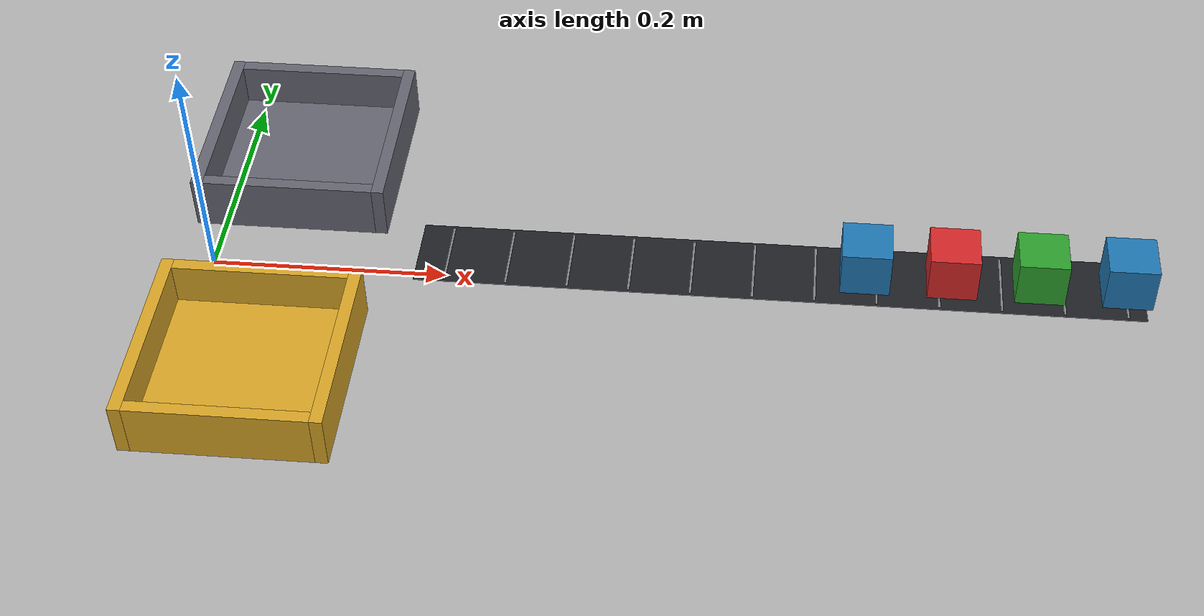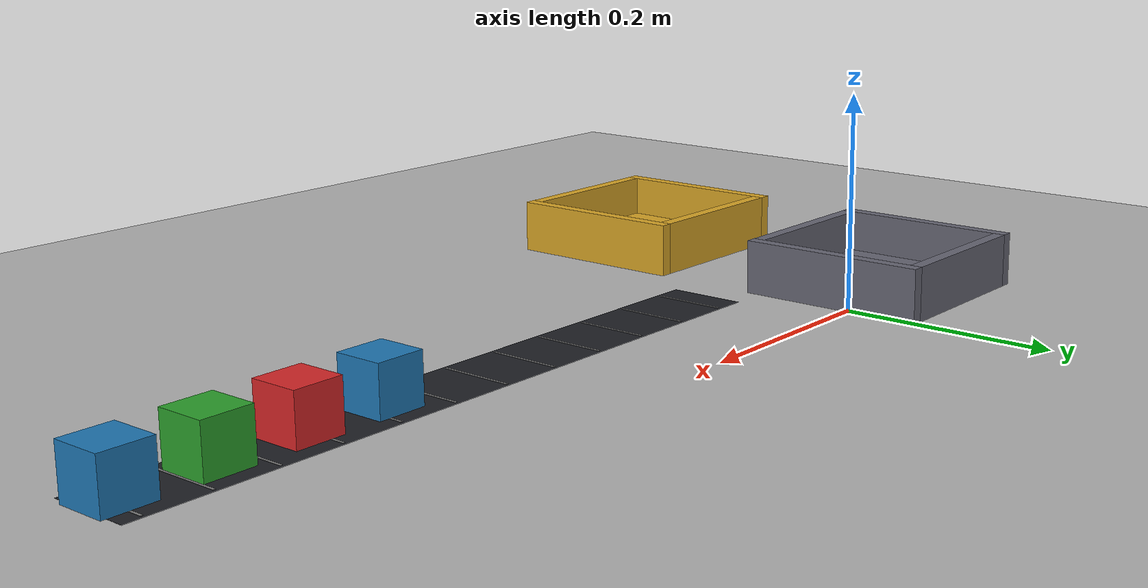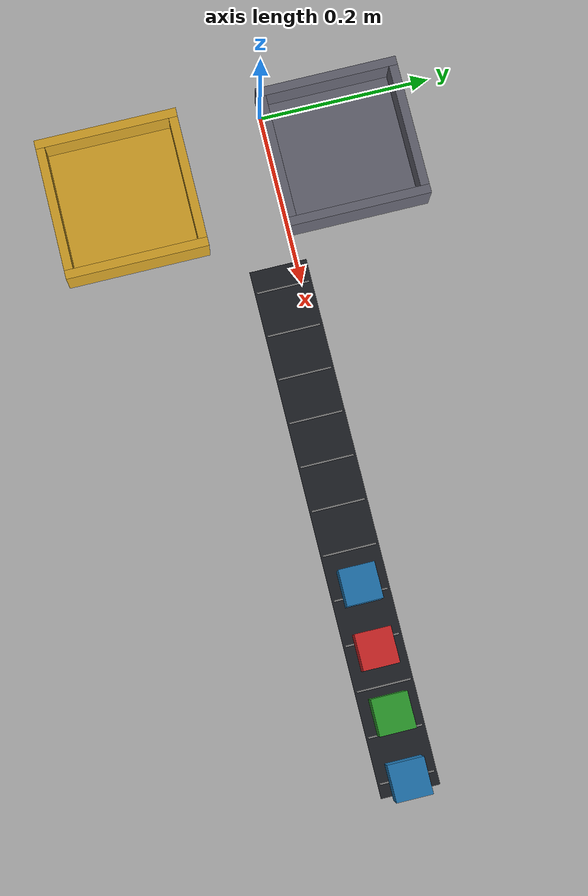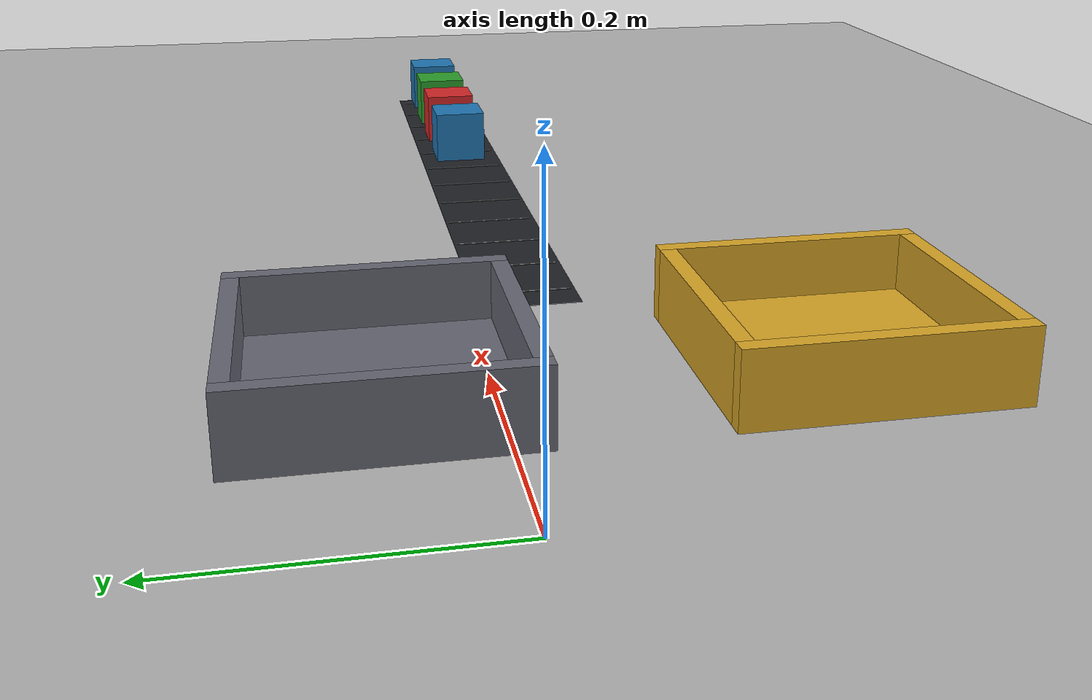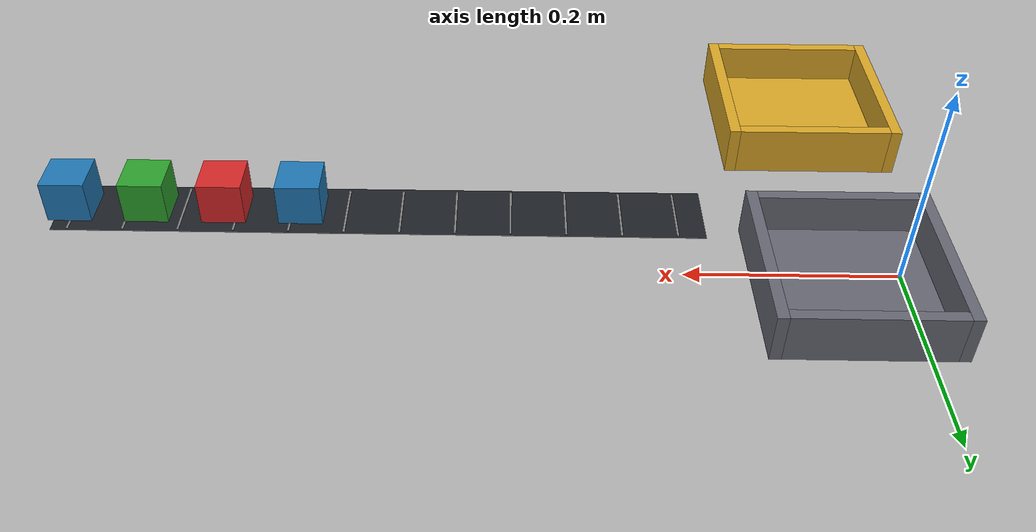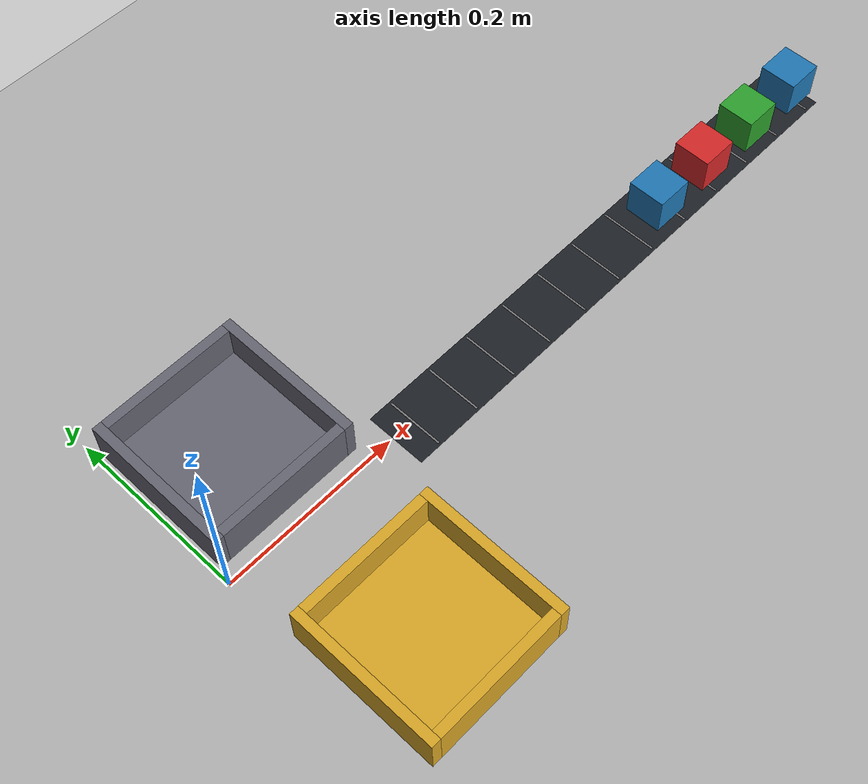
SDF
<sdf version="1.7">
  <world name="conveyor_sorting">
    <gravity>0 0 -9.8</gravity>
    <physics type="ode">
      <max_step_size>0.001</max_step_size>
      <real_time_update_rate>1000</real_time_update_rate>
      <real_time_factor>1.0</real_time_factor>
      <ode>
        <solver>
          <type>quick</type>
          <iters>100</iters>
        </solver>
        <constraints>
          <cfm>0.000001</cfm>
          <erp>0.2</erp>
        </constraints>
      </ode>
    </physics>
    <model name="table">
      <static>true</static>
      <pose>0 0 0 0 0 0</pose>
      <link name="base_link">
        <collision name="table_collision">
          <geometry>
            <box>
              <size>3.0 2.0 0.1</size>
            </box>
          </geometry>
        </collision>
        <visual name="table_visual">
          <geometry>
            <box>
              <size>3.0 2.0 0.1</size>
            </box>
          </geometry>
          <material>
            <ambient>0.7 0.7 0.7 1</ambient>
            <diffuse>0.7 0.7 0.7 1</diffuse>
          </material>
        </visual>
      </link>
    </model>
    <model name="camera_mount">
      <static>true</static>
      <pose>0.55 0.15 1.4 0 1.5708 0</pose>
      <link name="camera_link">
        <sensor type="camera" name="color_camera">
          <always_on>true</always_on>
          <update_rate>10</update_rate>
          <visualize>true</visualize>
          <camera name="color">
            <horizontal_fov>1.3962634</horizontal_fov>
            <image>
              <width>640</width>
              <height>480</height>
              <format>R8G8B8</format>
            </image>
            <clip>
              <near>0.02</near>
              <far>10.0</far>
            </clip>
          </camera>
          <plugin name="camera_controller" filename="libgazebo_ros_camera.so">
            <ros>
              <namespace>/camera</namespace>
              <remapping>image_raw:=color/image_raw</remapping>
              <remapping>camera_info:=color/camera_info</remapping>
            </ros>
            <camera_name>color</camera_name>
            <frame_name>camera_link</frame_name>
          </plugin>
        </sensor>
      </link>
    </model>
    <plugin name="gazebo_ros_state" filename="libgazebo_ros_state.so">
      <ros>
        <namespace>/gazebo</namespace>
      </ros>
    </plugin>
    <scene>
      <ambient>.45 .45 .45 1</ambient>
      <background>.14 .17 .21 1</background>
    </scene>
    <light name="task_light" type="directional">
      <pose>0 0 2 0 0 0</pose>
      <diffuse>.6 .6 .6 1</diffuse>
      <direction>-.2 .2 -1</direction>
    </light>
    <model name="delivery_tray">
      <static>true</static>
      <pose>.075 -.175 .05 0 0 0</pose>
      <link name="tray">
        <collision name="floor_collision">
          <pose>0 0 0.005 0 0 0</pose>
          <geometry>
            <box>
              <size>0.15 0.15 0.01</size>
            </box>
          </geometry>
          <surface>
            <friction>
              <ode>
                <mu>1.0</mu>
                <mu2>1.0</mu2>
              </ode>
            </friction>
            <contact>
              <ode>
                <kp>100000</kp>
                <kd>10</kd>
                <max_vel>0.1</max_vel>
                <min_depth>0.0002</min_depth>
              </ode>
            </contact>
          </surface>
        </collision>
        <visual name="floor_visual">
          <pose>0 0 0.005 0 0 0</pose>
          <geometry>
            <box>
              <size>0.15 0.15 0.01</size>
            </box>
          </geometry>
          <material>
            <ambient>.85 .65 .15 1</ambient>
            <diffuse>.85 .65 .15 1</diffuse>
          </material>
        </visual>
        <collision name="left_collision">
          <pose>-0.075 0 0.0225 0 0 0</pose>
          <geometry>
            <box>
              <size>0.01 0.16 0.045</size>
            </box>
          </geometry>
          <surface>
            <friction>
              <ode>
                <mu>1.0</mu>
                <mu2>1.0</mu2>
              </ode>
            </friction>
            <contact>
              <ode>
                <kp>100000</kp>
                <kd>10</kd>
                <max_vel>0.1</max_vel>
                <min_depth>0.0002</min_depth>
              </ode>
            </contact>
          </surface>
        </collision>
        <visual name="left_visual">
          <pose>-0.075 0 0.0225 0 0 0</pose>
          <geometry>
            <box>
              <size>0.01 0.16 0.045</size>
            </box>
          </geometry>
          <material>
            <ambient>.85 .65 .15 1</ambient>
            <diffuse>.85 .65 .15 1</diffuse>
          </material>
        </visual>
        <collision name="right_collision">
          <pose>0.075 0 0.0225 0 0 0</pose>
          <geometry>
            <box>
              <size>0.01 0.16 0.045</size>
            </box>
          </geometry>
          <surface>
            <friction>
              <ode>
                <mu>1.0</mu>
                <mu2>1.0</mu2>
              </ode>
            </friction>
            <contact>
              <ode>
                <kp>100000</kp>
                <kd>10</kd>
                <max_vel>0.1</max_vel>
                <min_depth>0.0002</min_depth>
              </ode>
            </contact>
          </surface>
        </collision>
        <visual name="right_visual">
          <pose>0.075 0 0.0225 0 0 0</pose>
          <geometry>
            <box>
              <size>0.01 0.16 0.045</size>
            </box>
          </geometry>
          <material>
            <ambient>.85 .65 .15 1</ambient>
            <diffuse>.85 .65 .15 1</diffuse>
          </material>
        </visual>
        <collision name="front_collision">
          <pose>0 -0.075 0.0225 0 0 0</pose>
          <geometry>
            <box>
              <size>0.14 0.01 0.045</size>
            </box>
          </geometry>
          <surface>
            <friction>
              <ode>
                <mu>1.0</mu>
                <mu2>1.0</mu2>
              </ode>
            </friction>
            <contact>
              <ode>
                <kp>100000</kp>
                <kd>10</kd>
                <max_vel>0.1</max_vel>
                <min_depth>0.0002</min_depth>
              </ode>
            </contact>
          </surface>
        </collision>
        <visual name="front_visual">
          <pose>0 -0.075 0.0225 0 0 0</pose>
          <geometry>
            <box>
              <size>0.14 0.01 0.045</size>
            </box>
          </geometry>
          <material>
            <ambient>.85 .65 .15 1</ambient>
            <diffuse>.85 .65 .15 1</diffuse>
          </material>
        </visual>
        <collision name="back_collision">
          <pose>0 0.075 0.0225 0 0 0</pose>
          <geometry>
            <box>
              <size>0.14 0.01 0.045</size>
            </box>
          </geometry>
          <surface>
            <friction>
              <ode>
                <mu>1.0</mu>
                <mu2>1.0</mu2>
              </ode>
            </friction>
            <contact>
              <ode>
                <kp>100000</kp>
                <kd>10</kd>
                <max_vel>0.1</max_vel>
                <min_depth>0.0002</min_depth>
              </ode>
            </contact>
          </surface>
        </collision>
        <visual name="back_visual">
          <pose>0 0.075 0.0225 0 0 0</pose>
          <geometry>
            <box>
              <size>0.14 0.01 0.045</size>
            </box>
          </geometry>
          <material>
            <ambient>.85 .65 .15 1</ambient>
            <diffuse>.85 .65 .15 1</diffuse>
          </material>
        </visual>
      </link>
    </model>
    <model name="demo_camera">
      <static>true</static>
      <pose>.66 -.66 .48 0 .45 2.33</pose>
      <link name="camera_link">
        <sensor type="camera" name="demo_camera_sensor">
          <always_on>true</always_on>
          <update_rate>10</update_rate>
          <visualize>true</visualize>
          <camera name="color">
            <horizontal_fov>.95</horizontal_fov>
            <image>
              <width>960</width>
              <height>720</height>
              <format>R8G8B8</format>
            </image>
            <clip>
              <near>0.02</near>
              <far>10.0</far>
            </clip>
          </camera>
          <plugin name="camera_controller" filename="libgazebo_ros_camera.so">
            <ros>
              <namespace>/demo_camera</namespace>
              <remapping>image_raw:=color/image_raw</remapping>
              <remapping>camera_info:=color/camera_info</remapping>
            </ros>
            <camera_name>color</camera_name>
            <frame_name>camera_link</frame_name>
          </plugin>
        </sensor>
      </link>
    </model>
    <model name="parcel_00">
      <pose>0.55 -.025 .071 0 0 0</pose>
      <link name="link">
        <inertial>
          <mass>0.03</mass>
          <inertia>
            <ixx>8e-06</ixx>
            <iyy>8e-06</iyy>
            <izz>8e-06</izz>
          </inertia>
        </inertial>
        <collision name="box_collision">
          <geometry>
            <box>
              <size>0.04 0.04 0.04</size>
            </box>
          </geometry>
          <surface>
            <friction>
              <ode>
                <mu>1.0</mu>
                <mu2>1.0</mu2>
              </ode>
            </friction>
            <contact>
              <ode>
                <kp>100000</kp>
                <kd>10</kd>
                <max_vel>0.1</max_vel>
                <min_depth>0.0002</min_depth>
              </ode>
            </contact>
          </surface>
        </collision>
        <visual name="visual">
          <geometry>
            <box>
              <size>0.04 0.04 0.04</size>
            </box>
          </geometry>
          <material>
            <ambient>.122 .467 .706 1</ambient>
            <diffuse>.122 .467 .706 1</diffuse>
          </material>
        </visual>
        <sensor name="box_contacts" type="contact">
          <always_on>true</always_on>
          <update_rate>100</update_rate>
          <contact>
            <collision>box_collision</collision>
          </contact>
          <plugin name="contacts_0" filename="libgazebo_ros_bumper.so">
            <ros>
              <remapping>bumper_states:=/grasp/contacts</remapping>
            </ros>
            <frame_name>world</frame_name>
          </plugin>
        </sensor>
      </link>
    </model>
    <model name="parcel_01">
      <pose>0.6200000000000001 -.025 .071 0 0 0</pose>
      <link name="link">
        <inertial>
          <mass>0.03</mass>
          <inertia>
            <ixx>8e-06</ixx>
            <iyy>8e-06</iyy>
            <izz>8e-06</izz>
          </inertia>
        </inertial>
        <collision name="box_collision">
          <geometry>
            <box>
              <size>0.04 0.04 0.04</size>
            </box>
          </geometry>
          <surface>
            <friction>
              <ode>
                <mu>1.0</mu>
                <mu2>1.0</mu2>
              </ode>
            </friction>
            <contact>
              <ode>
                <kp>100000</kp>
                <kd>10</kd>
                <max_vel>0.1</max_vel>
                <min_depth>0.0002</min_depth>
              </ode>
            </contact>
          </surface>
        </collision>
        <visual name="visual">
          <geometry>
            <box>
              <size>0.04 0.04 0.04</size>
            </box>
          </geometry>
          <material>
            <ambient>.839 .153 .157 1</ambient>
            <diffuse>.839 .153 .157 1</diffuse>
          </material>
        </visual>
        <sensor name="box_contacts" type="contact">
          <always_on>true</always_on>
          <update_rate>100</update_rate>
          <contact>
            <collision>box_collision</collision>
          </contact>
          <plugin name="contacts_1" filename="libgazebo_ros_bumper.so">
            <ros>
              <remapping>bumper_states:=/grasp/contacts</remapping>
            </ros>
            <frame_name>world</frame_name>
          </plugin>
        </sensor>
      </link>
    </model>
    <model name="parcel_02">
      <pose>0.6900000000000001 -.025 .071 0 0 0</pose>
      <link name="link">
        <inertial>
          <mass>0.03</mass>
          <inertia>
            <ixx>8e-06</ixx>
            <iyy>8e-06</iyy>
            <izz>8e-06</izz>
          </inertia>
        </inertial>
        <collision name="box_collision">
          <geometry>
            <box>
              <size>0.04 0.04 0.04</size>
            </box>
          </geometry>
          <surface>
            <friction>
              <ode>
                <mu>1.0</mu>
                <mu2>1.0</mu2>
              </ode>
            </friction>
            <contact>
              <ode>
                <kp>100000</kp>
                <kd>10</kd>
                <max_vel>0.1</max_vel>
                <min_depth>0.0002</min_depth>
              </ode>
            </contact>
          </surface>
        </collision>
        <visual name="visual">
          <geometry>
            <box>
              <size>0.04 0.04 0.04</size>
            </box>
          </geometry>
          <material>
            <ambient>.173 .627 .173 1</ambient>
            <diffuse>.173 .627 .173 1</diffuse>
          </material>
        </visual>
        <sensor name="box_contacts" type="contact">
          <always_on>true</always_on>
          <update_rate>100</update_rate>
          <contact>
            <collision>box_collision</collision>
          </contact>
          <plugin name="contacts_2" filename="libgazebo_ros_bumper.so">
            <ros>
              <remapping>bumper_states:=/grasp/contacts</remapping>
            </ros>
            <frame_name>world</frame_name>
          </plugin>
        </sensor>
      </link>
    </model>
    <model name="parcel_03">
      <pose>0.76 -.025 .071 0 0 0</pose>
      <link name="link">
        <inertial>
          <mass>0.03</mass>
          <inertia>
            <ixx>8e-06</ixx>
            <iyy>8e-06</iyy>
            <izz>8e-06</izz>
          </inertia>
        </inertial>
        <collision name="box_collision">
          <geometry>
            <box>
              <size>0.04 0.04 0.04</size>
            </box>
          </geometry>
          <surface>
            <friction>
              <ode>
                <mu>1.0</mu>
                <mu2>1.0</mu2>
              </ode>
            </friction>
            <contact>
              <ode>
                <kp>100000</kp>
                <kd>10</kd>
                <max_vel>0.1</max_vel>
                <min_depth>0.0002</min_depth>
              </ode>
            </contact>
          </surface>
        </collision>
        <visual name="visual">
          <geometry>
            <box>
              <size>0.04 0.04 0.04</size>
            </box>
          </geometry>
          <material>
            <ambient>.122 .467 .706 1</ambient>
            <diffuse>.122 .467 .706 1</diffuse>
          </material>
        </visual>
        <sensor name="box_contacts" type="contact">
          <always_on>true</always_on>
          <update_rate>100</update_rate>
          <contact>
            <collision>box_collision</collision>
          </contact>
          <plugin name="contacts_3" filename="libgazebo_ros_bumper.so">
            <ros>
              <remapping>bumper_states:=/grasp/contacts</remapping>
            </ros>
            <frame_name>world</frame_name>
          </plugin>
        </sensor>
      </link>
    </model>
    <model name="reject_tray">
      <static>true</static>
      <pose>.075 .075 .05 0 0 0</pose>
      <link name="tray">
        <collision name="floor_collision">
          <pose>0 0 0.005 0 0 0</pose>
          <geometry>
            <box>
              <size>0.15 0.15 0.01</size>
            </box>
          </geometry>
          <surface>
            <friction>
              <ode>
                <mu>1.0</mu>
                <mu2>1.0</mu2>
              </ode>
            </friction>
            <contact>
              <ode>
                <kp>100000</kp>
                <kd>10</kd>
                <max_vel>0.1</max_vel>
                <min_depth>0.0002</min_depth>
              </ode>
            </contact>
          </surface>
        </collision>
        <visual name="floor_visual">
          <pose>0 0 0.005 0 0 0</pose>
          <geometry>
            <box>
              <size>0.15 0.15 0.01</size>
            </box>
          </geometry>
          <material>
            <ambient>.4 .4 .45 1</ambient>
            <diffuse>.4 .4 .45 1</diffuse>
          </material>
        </visual>
        <collision name="left_collision">
          <pose>-0.075 0 0.0225 0 0 0</pose>
          <geometry>
            <box>
              <size>0.01 0.16 0.045</size>
            </box>
          </geometry>
          <surface>
            <friction>
              <ode>
                <mu>1.0</mu>
                <mu2>1.0</mu2>
              </ode>
            </friction>
            <contact>
              <ode>
                <kp>100000</kp>
                <kd>10</kd>
                <max_vel>0.1</max_vel>
                <min_depth>0.0002</min_depth>
              </ode>
            </contact>
          </surface>
        </collision>
        <visual name="left_visual">
          <pose>-0.075 0 0.0225 0 0 0</pose>
          <geometry>
            <box>
              <size>0.01 0.16 0.045</size>
            </box>
          </geometry>
          <material>
            <ambient>.4 .4 .45 1</ambient>
            <diffuse>.4 .4 .45 1</diffuse>
          </material>
        </visual>
        <collision name="right_collision">
          <pose>0.075 0 0.0225 0 0 0</pose>
          <geometry>
            <box>
              <size>0.01 0.16 0.045</size>
            </box>
          </geometry>
          <surface>
            <friction>
              <ode>
                <mu>1.0</mu>
                <mu2>1.0</mu2>
              </ode>
            </friction>
            <contact>
              <ode>
                <kp>100000</kp>
                <kd>10</kd>
                <max_vel>0.1</max_vel>
                <min_depth>0.0002</min_depth>
              </ode>
            </contact>
          </surface>
        </collision>
        <visual name="right_visual">
          <pose>0.075 0 0.0225 0 0 0</pose>
          <geometry>
            <box>
              <size>0.01 0.16 0.045</size>
            </box>
          </geometry>
          <material>
            <ambient>.4 .4 .45 1</ambient>
            <diffuse>.4 .4 .45 1</diffuse>
          </material>
        </visual>
        <collision name="front_collision">
          <pose>0 -0.075 0.0225 0 0 0</pose>
          <geometry>
            <box>
              <size>0.14 0.01 0.045</size>
            </box>
          </geometry>
          <surface>
            <friction>
              <ode>
                <mu>1.0</mu>
                <mu2>1.0</mu2>
              </ode>
            </friction>
            <contact>
              <ode>
                <kp>100000</kp>
                <kd>10</kd>
                <max_vel>0.1</max_vel>
                <min_depth>0.0002</min_depth>
              </ode>
            </contact>
          </surface>
        </collision>
        <visual name="front_visual">
          <pose>0 -0.075 0.0225 0 0 0</pose>
          <geometry>
            <box>
              <size>0.14 0.01 0.045</size>
            </box>
          </geometry>
          <material>
            <ambient>.4 .4 .45 1</ambient>
            <diffuse>.4 .4 .45 1</diffuse>
          </material>
        </visual>
        <collision name="back_collision">
          <pose>0 0.075 0.0225 0 0 0</pose>
          <geometry>
            <box>
              <size>0.14 0.01 0.045</size>
            </box>
          </geometry>
          <surface>
            <friction>
              <ode>
                <mu>1.0</mu>
                <mu2>1.0</mu2>
              </ode>
            </friction>
            <contact>
              <ode>
                <kp>100000</kp>
                <kd>10</kd>
                <max_vel>0.1</max_vel>
                <min_depth>0.0002</min_depth>
              </ode>
            </contact>
          </surface>
        </collision>
        <visual name="back_visual">
          <pose>0 0.075 0.0225 0 0 0</pose>
          <geometry>
            <box>
              <size>0.14 0.01 0.045</size>
            </box>
          </geometry>
          <material>
            <ambient>.4 .4 .45 1</ambient>
            <diffuse>.4 .4 .45 1</diffuse>
          </material>
        </visual>
      </link>
    </model>
    <model name="sorting_conveyor">
      <static>true</static>
      <pose>.48 -.025 .0502 0 0 0</pose>
      <link name="belt">
        <visual name="belt_surface">
          <geometry>
            <box>
              <size>0.59 0.065 0.0002</size>
            </box>
          </geometry>
          <material>
            <ambient>.12 .13 .15 1</ambient>
            <diffuse>.12 .13 .15 1</diffuse>
          </material>
        </visual>
        <visual name="stripe_0">
          <pose>-0.27 0 .0002 0 0 0</pose>
          <geometry>
            <box>
              <size>0.002 0.06 0.0002</size>
            </box>
          </geometry>
          <material>
            <ambient>.5 .5 .5 1</ambient>
            <diffuse>.5 .5 .5 1</diffuse>
          </material>
        </visual>
        <visual name="stripe_1">
          <pose>-0.22000000000000003 0 .0002 0 0 0</pose>
          <geometry>
            <box>
              <size>0.002 0.06 0.0002</size>
            </box>
          </geometry>
          <material>
            <ambient>.5 .5 .5 1</ambient>
            <diffuse>.5 .5 .5 1</diffuse>
          </material>
        </visual>
        <visual name="stripe_2">
          <pose>-0.17 0 .0002 0 0 0</pose>
          <geometry>
            <box>
              <size>0.002 0.06 0.0002</size>
            </box>
          </geometry>
          <material>
            <ambient>.5 .5 .5 1</ambient>
            <diffuse>.5 .5 .5 1</diffuse>
          </material>
        </visual>
        <visual name="stripe_3">
          <pose>-0.12 0 .0002 0 0 0</pose>
          <geometry>
            <box>
              <size>0.002 0.06 0.0002</size>
            </box>
          </geometry>
          <material>
            <ambient>.5 .5 .5 1</ambient>
            <diffuse>.5 .5 .5 1</diffuse>
          </material>
        </visual>
        <visual name="stripe_4">
          <pose>-0.07 0 .0002 0 0 0</pose>
          <geometry>
            <box>
              <size>0.002 0.06 0.0002</size>
            </box>
          </geometry>
          <material>
            <ambient>.5 .5 .5 1</ambient>
            <diffuse>.5 .5 .5 1</diffuse>
          </material>
        </visual>
        <visual name="stripe_5">
          <pose>-0.020000000000000018 0 .0002 0 0 0</pose>
          <geometry>
            <box>
              <size>0.002 0.06 0.0002</size>
            </box>
          </geometry>
          <material>
            <ambient>.5 .5 .5 1</ambient>
            <diffuse>.5 .5 .5 1</diffuse>
          </material>
        </visual>
        <visual name="stripe_6">
          <pose>0.030000000000000027 0 .0002 0 0 0</pose>
          <geometry>
            <box>
              <size>0.002 0.06 0.0002</size>
            </box>
          </geometry>
          <material>
            <ambient>.5 .5 .5 1</ambient>
            <diffuse>.5 .5 .5 1</diffuse>
          </material>
        </visual>
        <visual name="stripe_7">
          <pose>0.08000000000000002 0 .0002 0 0 0</pose>
          <geometry>
            <box>
              <size>0.002 0.06 0.0002</size>
            </box>
          </geometry>
          <material>
            <ambient>.5 .5 .5 1</ambient>
            <diffuse>.5 .5 .5 1</diffuse>
          </material>
        </visual>
        <visual name="stripe_8">
          <pose>0.13 0 .0002 0 0 0</pose>
          <geometry>
            <box>
              <size>0.002 0.06 0.0002</size>
            </box>
          </geometry>
          <material>
            <ambient>.5 .5 .5 1</ambient>
            <diffuse>.5 .5 .5 1</diffuse>
          </material>
        </visual>
        <visual name="stripe_9">
          <pose>0.18 0 .0002 0 0 0</pose>
          <geometry>
            <box>
              <size>0.002 0.06 0.0002</size>
            </box>
          </geometry>
          <material>
            <ambient>.5 .5 .5 1</ambient>
            <diffuse>.5 .5 .5 1</diffuse>
          </material>
        </visual>
        <visual name="stripe_10">
          <pose>0.22999999999999998 0 .0002 0 0 0</pose>
          <geometry>
            <box>
              <size>0.002 0.06 0.0002</size>
            </box>
          </geometry>
          <material>
            <ambient>.5 .5 .5 1</ambient>
            <diffuse>.5 .5 .5 1</diffuse>
          </material>
        </visual>
        <visual name="stripe_11">
          <pose>0.28 0 .0002 0 0 0</pose>
          <geometry>
            <box>
              <size>0.002 0.06 0.0002</size>
            </box>
          </geometry>
          <material>
            <ambient>.5 .5 .5 1</ambient>
            <diffuse>.5 .5 .5 1</diffuse>
          </material>
        </visual>
      </link>
    </model>
  </world>
</sdf>
